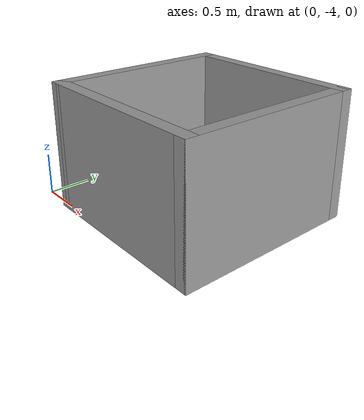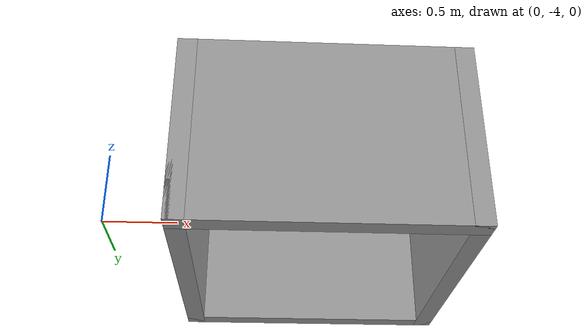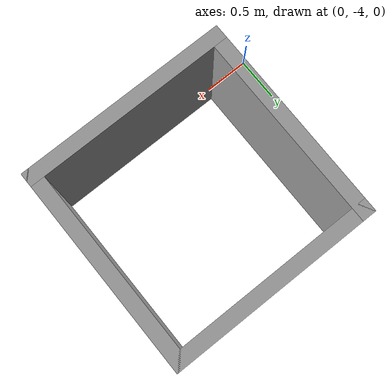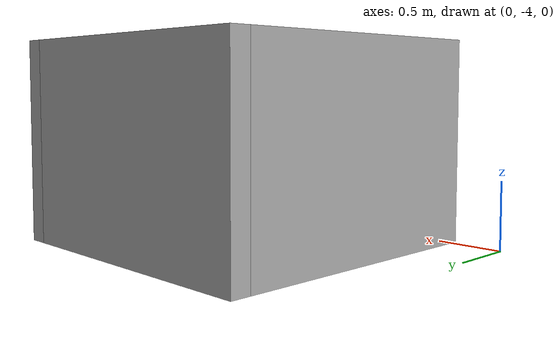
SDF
<?xml version='1.0'?>
<sdf version='1.6'>
  <model name='mybuild1'>
    <pose frame=''>1.52 -2.935 0 0 -0 0</pose>
    <link name='Wall_5'>
      <collision name='Wall_5_Collision'>
        <geometry>
          <box>
            <size>2.24 0.15 1.5</size>
          </box>
        </geometry>
        <pose frame=''>0 0 0.75 0 -0 0</pose>
      </collision>
      <visual name='Wall_5_Visual'>
        <pose frame=''>0 0 0.75 0 -0 0</pose>
        <geometry>
          <box>
            <size>2.24 0.15 1.5</size>
          </box>
        </geometry>
        <material>
          <script>
            <uri>file://media/materials/scripts/gazebo.material</uri>
            <name>Gazebo/Grey</name>
          </script>
          <ambient>1 1 1 1</ambient>
        </material>
        <meta>
          <layer>0</layer>
        </meta>
      </visual>
      <pose frame=''>-1.05 0 0 0 -0 -1.5708</pose>
    </link>
    <link name='Wall_6'>
      <collision name='Wall_6_Collision'>
        <geometry>
          <box>
            <size>2.25 0.15 1.5</size>
          </box>
        </geometry>
        <pose frame=''>0 0 0.75 0 -0 0</pose>
      </collision>
      <visual name='Wall_6_Visual'>
        <pose frame=''>0 0 0.75 0 -0 0</pose>
        <geometry>
          <box>
            <size>2.25 0.15 1.5</size>
          </box>
        </geometry>
        <material>
          <script>
            <uri>file://media/materials/scripts/gazebo.material</uri>
            <name>Gazebo/Grey</name>
          </script>
          <ambient>1 1 1 1</ambient>
        </material>
        <meta>
          <layer>0</layer>
        </meta>
      </visual>
      <pose frame=''>0 -1.045 0 0 -0 0</pose>
    </link>
    <link name='Wall_7'>
      <collision name='Wall_7_Collision'>
        <geometry>
          <box>
            <size>2.24 0.15 1.5</size>
          </box>
        </geometry>
        <pose frame=''>0 0 0.75 0 -0 0</pose>
      </collision>
      <visual name='Wall_7_Visual'>
        <pose frame=''>0 0 0.75 0 -0 0</pose>
        <geometry>
          <box>
            <size>2.24 0.15 1.5</size>
          </box>
        </geometry>
        <material>
          <script>
            <uri>file://media/materials/scripts/gazebo.material</uri>
            <name>Gazebo/Grey</name>
          </script>
          <ambient>1 1 1 1</ambient>
        </material>
        <meta>
          <layer>0</layer>
        </meta>
      </visual>
      <pose frame=''>1.05 0 0 0 -0 1.5708</pose>
    </link>
    <link name='Wall_8'>
      <collision name='Wall_8_Collision'>
        <geometry>
          <box>
            <size>2.25 0.15 1.5</size>
          </box>
        </geometry>
        <pose frame=''>0 0 0.75 0 -0 0</pose>
      </collision>
      <visual name='Wall_8_Visual'>
        <pose frame=''>0 0 0.75 0 -0 0</pose>
        <geometry>
          <box>
            <size>2.25 0.15 1.5</size>
          </box>
        </geometry>
        <material>
          <script>
            <uri>file://media/materials/scripts/gazebo.material</uri>
            <name>Gazebo/Grey</name>
          </script>
          <ambient>1 1 1 1</ambient>
        </material>
        <meta>
          <layer>0</layer>
        </meta>
      </visual>
      <pose frame=''>0 1.045 0 0 -0 3.14159</pose>
    </link>
    <static>1</static>
  </model>
</sdf>
